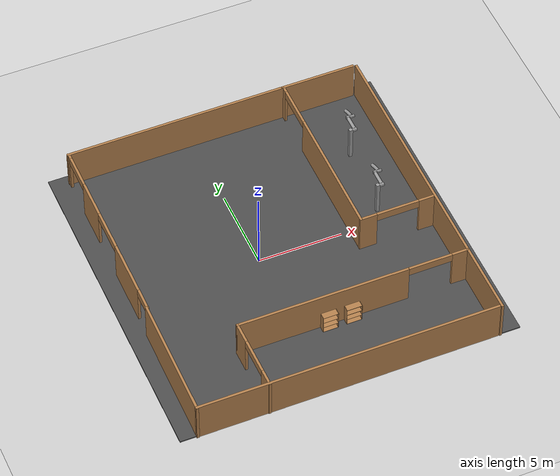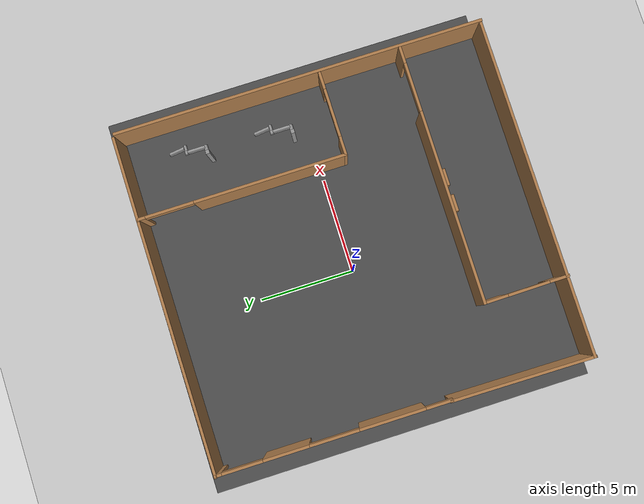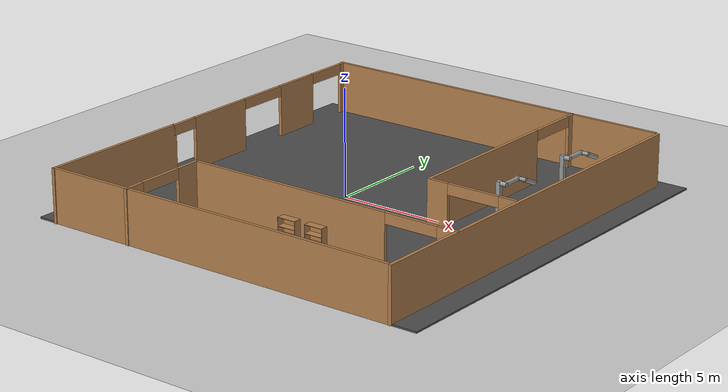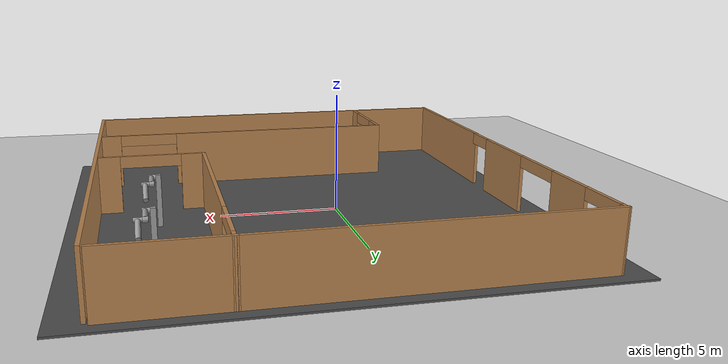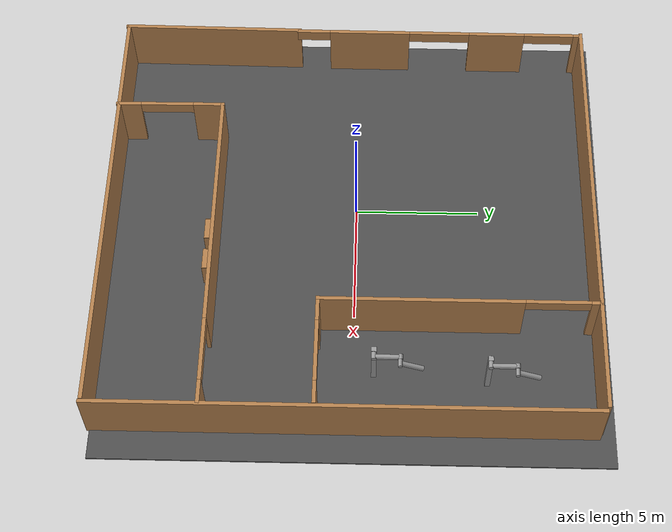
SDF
<sdf version="1.7">
 <world name="default">
  <model name="ground_plane">
   <static>1</static>
   <link name="link">
    <collision name="collision">
     <geometry><plane><normal>0 0 1</normal><size>100 100</size></plane></geometry>
     <surface><friction><ode><mu>100</mu><mu2>50</mu2></ode></friction></surface>
    </collision>
    <visual name="visual">
     <cast_shadows>0</cast_shadows>
     <geometry><plane><normal>0 0 1</normal><size>100 100</size></plane></geometry>
     <material>
      <script><uri>file://media/materials/scripts/gazebo.material</uri><name>Gazebo/Grey</name></script>
     </material>
    </visual>
   </link>
  </model>
  <model name="Untitled">
   <pose>1.1702 -0.25119 0 0 -0 0</pose>
   <link name="Wall_18">
    <collision name="Wall_18_Collision">
     <geometry><box><size>7.52942 0.15 2.5</size></box></geometry>
     <pose>0 0 1.25 0 -0 0</pose>
    </collision>
    <visual name="Wall_18_Visual">
     <pose>0 0 1.25 0 -0 0</pose>
     <geometry><box><size>7.52942 0.15 2.5</size></box></geometry>
     <material>
      <script><uri>file://media/materials/scripts/gazebo.material</uri><name>Gazebo/Wood</name></script>
      <ambient>0.996078 0.47451 0.0196078 1</ambient>
     </material>
     <meta><layer>0</layer></meta>
    </visual>
    <pose>-8.84446 -6.04176 0 0 -0 -1.58176</pose>
   </link>
   <link name="Wall_19">
    <collision name="Wall_19_Collision">
     <geometry><box><size>17.75 0.15 2.5</size></box></geometry>
     <pose>0 0 1.25 0 -0 0</pose>
    </collision>
    <visual name="Wall_19_Visual">
     <pose>0 0 1.25 0 -0 0</pose>
     <geometry><box><size>17.75 0.15 2.5</size></box></geometry>
     <material>
      <script><uri>file://media/materials/scripts/gazebo.material</uri><name>Gazebo/Wood</name></script>
      <ambient>0.996078 0.47451 0.0196078 1</ambient>
     </material>
     <meta><layer>0</layer></meta>
    </visual>
    <pose>-0.084919 -9.6908 0 0 -0 0</pose>
   </link>
   <link name="Wall_22">
    <collision name="Wall_22_Collision">
     <geometry><box><size>19.5 0.15 2.5</size></box></geometry>
     <pose>0 0 1.25 0 -0 0</pose>
    </collision>
    <visual name="Wall_22_Visual">
     <pose>0 0 1.25 0 -0 0</pose>
     <geometry><box><size>19.5 0.15 2.5</size></box></geometry>
     <material>
      <script><uri>file://media/materials/scripts/gazebo.material</uri><name>Gazebo/Wood</name></script>
      <ambient>1 1 1 1</ambient>
     </material>
     <meta><layer>0</layer></meta>
    </visual>
    <pose>8.88574 -0.046361 0 0 -0 1.5708</pose>
   </link>
   <link name="Wall_24">
    <pose>4.37815 4.31049 0 0 -0 1.5708</pose>
    <visual name="Wall_24_Visual_0">
     <pose>-1.48805 0 1.25 0 -0 0</pose>
     <geometry><box><size>8.02389 0.15 2.5</size></box></geometry>
     <material>
      <script><uri>file://media/materials/scripts/gazebo.material</uri><name>Gazebo/Wood</name></script>
      <ambient>1 1 1 1</ambient>
     </material>
     <meta><layer>0</layer></meta>
    </visual>
    <collision name="Wall_24_Collision_0">
     <geometry><box><size>8.02389 0.15 2.5</size></box></geometry>
     <pose>-1.48805 0 1.25 0 -0 0</pose>
    </collision>
    <visual name="Wall_24_Visual_1">
     <pose>5.27106 0 1.25 0 -0 0</pose>
     <geometry><box><size>0.457884 0.15 2.5</size></box></geometry>
     <material>
      <script><uri>file://media/materials/scripts/gazebo.material</uri><name>Gazebo/Wood</name></script>
      <ambient>1 1 1 1</ambient>
     </material>
     <meta><layer>0</layer></meta>
    </visual>
    <collision name="Wall_24_Collision_1">
     <geometry><box><size>0.457884 0.15 2.5</size></box></geometry>
     <pose>5.27106 0 1.25 0 -0 0</pose>
    </collision>
    <visual name="Wall_24_Visual_2">
     <pose>3.783 0 2.25 0 -0 0</pose>
     <geometry><box><size>2.51822 0.15 0.5</size></box></geometry>
     <material>
      <script><uri>file://media/materials/scripts/gazebo.material</uri><name>Gazebo/Wood</name></script>
      <ambient>1 1 1 1</ambient>
     </material>
     <meta><layer>0</layer></meta>
    </visual>
    <collision name="Wall_24_Collision_2">
     <geometry><box><size>2.51822 0.15 0.5</size></box></geometry>
     <pose>3.783 0 2.25 0 -0 0</pose>
    </collision>
   </link>
   <link name="Wall_25">
    <collision name="Wall_25_Collision">
     <geometry><box><size>13.2558 0.15 2.5</size></box></geometry>
     <pose>0 0 1.25 0 -0 0</pose>
    </collision>
    <visual name="Wall_25_Visual">
     <pose>0 0 1.25 0 -0 0</pose>
     <geometry><box><size>13.2558 0.15 2.5</size></box></geometry>
     <material>
      <script><uri>file://media/materials/scripts/gazebo.material</uri><name>Gazebo/Wood</name></script>
      <ambient>0.996078 0.47451 0.0196078 1</ambient>
     </material>
     <meta><layer>0</layer></meta>
    </visual>
    <pose>-2.22822 9.71302 0 0 -0 -3.13816</pose>
   </link>
   <link name="Wall_26">
    <pose>-8.7521 3.66913 0 0 -0 -1.5727</pose>
    <visual name="Wall_26_Visual_0">
     <pose>-5.90152 0 1.25 0 -0 0</pose>
     <geometry><box><size>0.389797 0.15 2.5</size></box></geometry>
     <material>
      <script><uri>file://media/materials/scripts/gazebo.material</uri><name>Gazebo/Wood</name></script>
      <ambient>1 1 1 1</ambient>
     </material>
     <meta><layer>0</layer></meta>
    </visual>
    <collision name="Wall_26_Collision_0">
     <geometry><box><size>0.389797 0.15 2.5</size></box></geometry>
     <pose>-5.90152 0 1.25 0 -0 0</pose>
    </collision>
    <visual name="Wall_26_Visual_1">
     <pose>-2.43056 0 1.25 0 -0 0</pose>
     <geometry><box><size>2.36586 0.15 2.5</size></box></geometry>
     <material>
      <script><uri>file://media/materials/scripts/gazebo.material</uri><name>Gazebo/Wood</name></script>
      <ambient>1 1 1 1</ambient>
     </material>
     <meta><layer>0</layer></meta>
    </visual>
    <collision name="Wall_26_Collision_1">
     <geometry><box><size>2.36586 0.15 2.5</size></box></geometry>
     <pose>-2.43056 0 1.25 0 -0 0</pose>
    </collision>
    <visual name="Wall_26_Visual_2">
     <pose>3.00362 0 1.25 0 -0 0</pose>
     <geometry><box><size>3.40409 0.15 2.5</size></box></geometry>
     <material>
      <script><uri>file://media/materials/scripts/gazebo.material</uri><name>Gazebo/Wood</name></script>
      <ambient>1 1 1 1</ambient>
     </material>
     <meta><layer>0</layer></meta>
    </visual>
    <collision name="Wall_26_Collision_2">
     <geometry><box><size>3.40409 0.15 2.5</size></box></geometry>
     <pose>3.00362 0 1.25 0 -0 0</pose>
    </collision>
    <visual name="Wall_26_Visual_3">
     <pose>-4.66005 0 2.25 0 -0 0</pose>
     <geometry><box><size>2.09313 0.15 0.5</size></box></geometry>
     <material>
      <script><uri>file://media/materials/scripts/gazebo.material</uri><name>Gazebo/Wood</name></script>
      <ambient>1 1 1 1</ambient>
     </material>
     <meta><layer>0</layer></meta>
    </visual>
    <collision name="Wall_26_Collision_3">
     <geometry><box><size>2.09313 0.15 0.5</size></box></geometry>
     <pose>-4.66005 0 2.25 0 -0 0</pose>
    </collision>
    <visual name="Wall_26_Visual_4">
     <pose>0.026972 0 2.25 0 -0 0</pose>
     <geometry><box><size>2.5492 0.15 0.5</size></box></geometry>
     <material>
      <script><uri>file://media/materials/scripts/gazebo.material</uri><name>Gazebo/Wood</name></script>
      <ambient>1 1 1 1</ambient>
     </material>
     <meta><layer>0</layer></meta>
    </visual>
    <collision name="Wall_26_Collision_4">
     <geometry><box><size>2.5492 0.15 0.5</size></box></geometry>
     <pose>0.026972 0 2.25 0 -0 0</pose>
    </collision>
    <visual name="Wall_26_Visual_5">
     <pose>5.40104 0 2.25 0 -0 0</pose>
     <geometry><box><size>1.39075 0.15 0.5</size></box></geometry>
     <material>
      <script><uri>file://media/materials/scripts/gazebo.material</uri><name>Gazebo/Wood</name></script>
      <ambient>1 1 1 1</ambient>
     </material>
     <meta><layer>0</layer></meta>
    </visual>
    <collision name="Wall_26_Collision_5">
     <geometry><box><size>1.39075 0.15 0.5</size></box></geometry>
     <pose>5.40104 0 2.25 0 -0 0</pose>
    </collision>
   </link>
   <link name="Wall_33">
    <pose>6.55316 -1.11451 0 0 -0 0</pose>
    <visual name="Wall_33_Visual_0">
     <pose>-1.72937 0 1.25 0 -0 0</pose>
     <geometry><box><size>1.04125 0.15 2.5</size></box></geometry>
     <material>
      <script><uri>file://media/materials/scripts/gazebo.material</uri><name>Gazebo/Wood</name></script>
      <ambient>1 1 1 1</ambient>
     </material>
     <meta><layer>0</layer></meta>
    </visual>
    <collision name="Wall_33_Collision_0">
     <geometry><box><size>1.04125 0.15 2.5</size></box></geometry>
     <pose>-1.72937 0 1.25 0 -0 0</pose>
    </collision>
    <visual name="Wall_33_Visual_1">
     <pose>1.79266 0 1.25 0 -0 0</pose>
     <geometry><box><size>0.914682 0.15 2.5</size></box></geometry>
     <material>
      <script><uri>file://media/materials/scripts/gazebo.material</uri><name>Gazebo/Wood</name></script>
      <ambient>1 1 1 1</ambient>
     </material>
     <meta><layer>0</layer></meta>
    </visual>
    <collision name="Wall_33_Collision_1">
     <geometry><box><size>0.914682 0.15 2.5</size></box></geometry>
     <pose>1.79266 0 1.25 0 -0 0</pose>
    </collision>
    <visual name="Wall_33_Visual_2">
     <pose>0.063285 0 2.25 0 -0 0</pose>
     <geometry><box><size>2.54407 0.15 0.5</size></box></geometry>
     <material>
      <script><uri>file://media/materials/scripts/gazebo.material</uri><name>Gazebo/Wood</name></script>
      <ambient>1 1 1 1</ambient>
     </material>
     <meta><layer>0</layer></meta>
    </visual>
    <collision name="Wall_33_Collision_2">
     <geometry><box><size>2.54407 0.15 0.5</size></box></geometry>
     <pose>0.063285 0 2.25 0 -0 0</pose>
    </collision>
   </link>
   <link name="Wall_35">
    <collision name="Wall_35_Collision">
     <geometry><box><size>4.5 0.15 2.5</size></box></geometry>
     <pose>0 0 1.25 0 -0 0</pose>
    </collision>
    <visual name="Wall_35_Visual">
     <pose>0 0 1.25 0 -0 0</pose>
     <geometry><box><size>4.5 0.15 2.5</size></box></geometry>
     <material>
      <script><uri>file://media/materials/scripts/gazebo.material</uri><name>Gazebo/Wood</name></script>
      <ambient>1 1 1 1</ambient>
     </material>
     <meta><layer>0</layer></meta>
    </visual>
    <pose>6.49965 9.73549 0 0 -0 0</pose>
   </link>
   <link name="Wall_37">
    <pose>2.03237 -5.38514 0 0 -0 3.14159</pose>
    <visual name="Wall_37_Visual_0">
     <pose>-6.38281 0 1.25 0 -0 0</pose>
     <geometry><box><size>0.984382 0.15 2.5</size></box></geometry>
     <material>
      <script><uri>file://media/materials/scripts/gazebo.material</uri><name>Gazebo/Wood</name></script>
      <ambient>1 1 1 1</ambient>
     </material>
     <meta><layer>0</layer></meta>
    </visual>
    <collision name="Wall_37_Collision_0">
     <geometry><box><size>0.984382 0.15 2.5</size></box></geometry>
     <pose>-6.38281 0 1.25 0 -0 0</pose>
    </collision>
    <visual name="Wall_37_Visual_1">
     <pose>1.78648 0 1.25 0 -0 0</pose>
     <geometry><box><size>10.177 0.15 2.5</size></box></geometry>
     <material>
      <script><uri>file://media/materials/scripts/gazebo.material</uri><name>Gazebo/Wood</name></script>
      <ambient>1 1 1 1</ambient>
     </material>
     <meta><layer>0</layer></meta>
    </visual>
    <collision name="Wall_37_Collision_1">
     <geometry><box><size>10.177 0.15 2.5</size></box></geometry>
     <pose>1.78648 0 1.25 0 -0 0</pose>
    </collision>
    <visual name="Wall_37_Visual_2">
     <pose>-4.59633 0 2.25 0 -0 0</pose>
     <geometry><box><size>2.58858 0.15 0.5</size></box></geometry>
     <material>
      <script><uri>file://media/materials/scripts/gazebo.material</uri><name>Gazebo/Wood</name></script>
      <ambient>1 1 1 1</ambient>
     </material>
     <meta><layer>0</layer></meta>
    </visual>
    <collision name="Wall_37_Collision_2">
     <geometry><box><size>2.58858 0.15 0.5</size></box></geometry>
     <pose>-4.59633 0 2.25 0 -0 0</pose>
    </collision>
   </link>
   <link name="Wall_38">
    <pose>-4.75004 -7.57773 0 0 -0 -1.56264</pose>
    <visual name="Wall_38_Visual_0">
     <pose>-1.60236 0 1.25 0 -0 0</pose>
     <geometry><box><size>1.26025 0.15 2.5</size></box></geometry>
     <material>
      <script><uri>file://media/materials/scripts/gazebo.material</uri><name>Gazebo/Wood</name></script>
      <ambient>1 1 1 1</ambient>
     </material>
     <meta><layer>0</layer></meta>
    </visual>
    <collision name="Wall_38_Collision_0">
     <geometry><box><size>1.26025 0.15 2.5</size></box></geometry>
     <pose>-1.60236 0 1.25 0 -0 0</pose>
    </collision>
    <visual name="Wall_38_Visual_1">
     <pose>1.71362 0 1.25 0 -0 0</pose>
     <geometry><box><size>1.03772 0.15 2.5</size></box></geometry>
     <material>
      <script><uri>file://media/materials/scripts/gazebo.material</uri><name>Gazebo/Wood</name></script>
      <ambient>1 1 1 1</ambient>
     </material>
     <meta><layer>0</layer></meta>
    </visual>
    <collision name="Wall_38_Collision_1">
     <geometry><box><size>1.03772 0.15 2.5</size></box></geometry>
     <pose>1.71362 0 1.25 0 -0 0</pose>
    </collision>
    <visual name="Wall_38_Visual_2">
     <pose>0.111266 0 2.25 0 -0 0</pose>
     <geometry><box><size>2.167 0.15 0.5</size></box></geometry>
     <material>
      <script><uri>file://media/materials/scripts/gazebo.material</uri><name>Gazebo/Wood</name></script>
      <ambient>1 1 1 1</ambient>
     </material>
     <meta><layer>0</layer></meta>
    </visual>
    <collision name="Wall_38_Collision_2">
     <geometry><box><size>2.167 0.15 0.5</size></box></geometry>
     <pose>0.111266 0 2.25 0 -0 0</pose>
    </collision>
   </link>
   <static>1</static>
  </model>
  <model name="asphalt_plane">
   <link name="link">
    <visual name="visual">
     <cast_shadows>0</cast_shadows>
     <geometry><box><size>20 20 0.1</size></box></geometry>
     <material>
      <script>
       <uri>model://asphalt_plane/materials/scripts</uri>
       <uri>model://asphalt_plane/materials/textures</uri>
       <name>vrc/asphalt</name>
      </script>
      <shader type="pixel"/>
     </material>
    </visual>
    <collision name="collision">
     <geometry><box><size>20 20 0.1</size></box></geometry>
     <surface>
      <friction>
       <ode><mu>1</mu><mu2>1</mu2><fdir1>0 0 0</fdir1><slip1>0</slip1><slip2>0</slip2></ode>
       <torsional>
        <coefficient>1</coefficient>
        <patch_radius>0</patch_radius>
        <surface_radius>0</surface_radius>
        <use_patch_radius>1</use_patch_radius>
        <ode><slip>0</slip></ode>
       </torsional>
      </friction>
      <bounce><restitution_coefficient>0</restitution_coefficient><threshold>1e+06</threshold></bounce>
      <contact>
       <collide_without_contact>0</collide_without_contact>
       <collide_without_contact_bitmask>1</collide_without_contact_bitmask>
       <collide_bitmask>1</collide_bitmask>
       <ode>
        <soft_cfm>0</soft_cfm>
        <soft_erp>0.2</soft_erp>
        <kp>1e+13</kp>
        <kd>1</kd>
        <max_vel>0.01</max_vel>
        <min_depth>0</min_depth>
       </ode>
       <bullet>
        <split_impulse>1</split_impulse>
        <split_impulse_penetration_threshold>-0.01</split_impulse_penetration_threshold>
        <soft_cfm>0</soft_cfm>
        <soft_erp>0.2</soft_erp>
        <kp>1e+13</kp>
        <kd>1</kd>
       </bullet>
      </contact>
     </surface>
    </collision>
   </link>
   <static>1</static>
   <pose>1.27844 0.044412 0 0 -0 0</pose>
  </model>
  <model name="bookshelf_2">
   <static>1</static>
   <link name="link">
    <inertial><mass>1</mass></inertial>
    <collision name="back">
     <pose>0 0.005 0.6 0 -0 0</pose>
     <geometry><box><size>0.9 0.01 1.2</size></box></geometry>
    </collision>
    <visual name="visual1">
     <pose>0 0.005 0.6 0 -0 0</pose>
     <geometry><box><size>0.9 0.01 1.2</size></box></geometry>
     <material>
      <script><uri>file://media/materials/scripts/gazebo.material</uri><name>Gazebo/Wood</name></script>
     </material>
    </visual>
    <collision name="left_side">
     <pose>0.45 -0.195 0.6 0 -0 0</pose>
     <geometry><box><size>0.02 0.4 1.2</size></box></geometry>
    </collision>
    <visual name="visual2">
     <pose>0.45 -0.195 0.6 0 -0 0</pose>
     <geometry><box><size>0.02 0.4 1.2</size></box></geometry>
     <material>
      <script><uri>file://media/materials/scripts/gazebo.material</uri><name>Gazebo/Wood</name></script>
     </material>
    </visual>
    <collision name="right_side">
     <pose>-0.45 -0.195 0.6 0 -0 0</pose>
     <geometry><box><size>0.02 0.4 1.2</size></box></geometry>
    </collision>
    <visual name="visual3">
     <pose>-0.45 -0.195 0.6 0 -0 0</pose>
     <geometry><box><size>0.02 0.4 1.2</size></box></geometry>
     <material>
      <script><uri>file://media/materials/scripts/gazebo.material</uri><name>Gazebo/Wood</name></script>
     </material>
    </visual>
    <collision name="bottom">
     <pose>0 -0.195 0.03 0 -0 0</pose>
     <geometry><box><size>0.88 0.4 0.06</size></box></geometry>
    </collision>
    <visual name="visual4">
     <pose>0 -0.195 0.03 0 -0 0</pose>
     <geometry><box><size>0.88 0.4 0.06</size></box></geometry>
     <material>
      <script><uri>file://media/materials/scripts/gazebo.material</uri><name>Gazebo/Wood</name></script>
     </material>
    </visual>
    <collision name="top">
     <pose>0 -0.195 1.19 0 -0 0</pose>
     <geometry><box><size>0.88 0.4 0.02</size></box></geometry>
    </collision>
    <visual name="visual5">
     <pose>0 -0.195 1.19 0 -0 0</pose>
     <geometry><box><size>0.88 0.4 0.02</size></box></geometry>
     <material>
      <script><uri>file://media/materials/scripts/gazebo.material</uri><name>Gazebo/Wood</name></script>
     </material>
    </visual>
    <collision name="low_shelf">
     <pose>0 -0.195 0.43 0 -0 0</pose>
     <geometry><box><size>0.88 0.4 0.02</size></box></geometry>
    </collision>
    <visual name="visual6">
     <pose>0 -0.195 0.43 0 -0 0</pose>
     <geometry><box><size>0.88 0.4 0.02</size></box></geometry>
     <material>
      <script><uri>file://media/materials/scripts/gazebo.material</uri><name>Gazebo/Wood</name></script>
     </material>
    </visual>
    <collision name="high_shelf">
     <pose>0 -0.195 0.8 0 -0 0</pose>
     <geometry><box><size>0.88 0.4 0.02</size></box></geometry>
    </collision>
    <visual name="visual7">
     <pose>0 -0.195 0.8 0 -0 0</pose>
     <geometry><box><size>0.88 0.4 0.02</size></box></geometry>
     <material>
      <script><uri>file://media/materials/scripts/gazebo.material</uri><name>Gazebo/Wood</name></script>
     </material>
    </visual>
   </link>
   <pose>1.70081 -5.70007 0 0 -0 0</pose>
  </model>
  <model name="bookshelf_3">
   <static>1</static>
   <link name="link">
    <inertial><mass>1</mass></inertial>
    <collision name="back">
     <pose>0 0.005 0.6 0 -0 0</pose>
     <geometry><box><size>0.9 0.01 1.2</size></box></geometry>
    </collision>
    <visual name="visual1">
     <pose>0 0.005 0.6 0 -0 0</pose>
     <geometry><box><size>0.9 0.01 1.2</size></box></geometry>
     <material>
      <script><uri>file://media/materials/scripts/gazebo.material</uri><name>Gazebo/Wood</name></script>
     </material>
    </visual>
    <collision name="left_side">
     <pose>0.45 -0.195 0.6 0 -0 0</pose>
     <geometry><box><size>0.02 0.4 1.2</size></box></geometry>
    </collision>
    <visual name="visual2">
     <pose>0.45 -0.195 0.6 0 -0 0</pose>
     <geometry><box><size>0.02 0.4 1.2</size></box></geometry>
     <material>
      <script><uri>file://media/materials/scripts/gazebo.material</uri><name>Gazebo/Wood</name></script>
     </material>
    </visual>
    <collision name="right_side">
     <pose>-0.45 -0.195 0.6 0 -0 0</pose>
     <geometry><box><size>0.02 0.4 1.2</size></box></geometry>
    </collision>
    <visual name="visual3">
     <pose>-0.45 -0.195 0.6 0 -0 0</pose>
     <geometry><box><size>0.02 0.4 1.2</size></box></geometry>
     <material>
      <script><uri>file://media/materials/scripts/gazebo.material</uri><name>Gazebo/Wood</name></script>
     </material>
    </visual>
    <collision name="bottom">
     <pose>0 -0.195 0.03 0 -0 0</pose>
     <geometry><box><size>0.88 0.4 0.06</size></box></geometry>
    </collision>
    <visual name="visual4">
     <pose>0 -0.195 0.03 0 -0 0</pose>
     <geometry><box><size>0.88 0.4 0.06</size></box></geometry>
     <material>
      <script><uri>file://media/materials/scripts/gazebo.material</uri><name>Gazebo/Wood</name></script>
     </material>
    </visual>
    <collision name="top">
     <pose>0 -0.195 1.19 0 -0 0</pose>
     <geometry><box><size>0.88 0.4 0.02</size></box></geometry>
    </collision>
    <visual name="visual5">
     <pose>0 -0.195 1.19 0 -0 0</pose>
     <geometry><box><size>0.88 0.4 0.02</size></box></geometry>
     <material>
      <script><uri>file://media/materials/scripts/gazebo.material</uri><name>Gazebo/Wood</name></script>
     </material>
    </visual>
    <collision name="low_shelf">
     <pose>0 -0.195 0.43 0 -0 0</pose>
     <geometry><box><size>0.88 0.4 0.02</size></box></geometry>
    </collision>
    <visual name="visual6">
     <pose>0 -0.195 0.43 0 -0 0</pose>
     <geometry><box><size>0.88 0.4 0.02</size></box></geometry>
     <material>
      <script><uri>file://media/materials/scripts/gazebo.material</uri><name>Gazebo/Wood</name></script>
     </material>
    </visual>
    <collision name="high_shelf">
     <pose>0 -0.195 0.8 0 -0 0</pose>
     <geometry><box><size>0.88 0.4 0.02</size></box></geometry>
    </collision>
    <visual name="visual7">
     <pose>0 -0.195 0.8 0 -0 0</pose>
     <geometry><box><size>0.88 0.4 0.02</size></box></geometry>
     <material>
      <script><uri>file://media/materials/scripts/gazebo.material</uri><name>Gazebo/Wood</name></script>
     </material>
    </visual>
   </link>
   <pose>3.10949 -5.68982 0 0 -0 0</pose>
  </model>
  <model name="double_pendulum_with_base">
   <link name="base">
    <inertial>
     <mass>100</mass>
     <inertia><ixx>1</ixx><ixy>0</ixy><ixz>0</ixz><iyy>1</iyy><iyz>0</iyz><izz>1</izz></inertia>
    </inertial>
    <visual name="vis_plate_on_ground">
     <pose>0 0 0.01 0 -0 0</pose>
     <geometry><cylinder><radius>0.8</radius><length>0.02</length></cylinder></geometry>
     <material>
      <script><uri>file://media/materials/scripts/gazebo.material</uri><name>Gazebo/Grey</name></script>
     </material>
    </visual>
    <visual name="vis_pole">
     <pose>-0.275 0 1.1 0 -0 0</pose>
     <geometry><box><size>0.2 0.2 2.2</size></box></geometry>
     <material>
      <script><uri>file://media/materials/scripts/gazebo.material</uri><name>Gazebo/Grey</name></script>
     </material>
    </visual>
    <collision name="col_plate_on_ground">
     <pose>0 0 0.01 0 -0 0</pose>
     <geometry><cylinder><radius>0.8</radius><length>0.02</length></cylinder></geometry>
    </collision>
    <collision name="col_pole">
     <pose>-0.275 0 1.1 0 -0 0</pose>
     <geometry><box><size>0.2 0.2 2.2</size></box></geometry>
    </collision>
   </link>
   <link name="upper_link">
    <pose>0 0 2.1 -1.5708 0 0</pose>
    <inertial>
     <pose>0 0 0.5 0 -0 0</pose>
     <inertia><ixx>1</ixx><ixy>0</ixy><ixz>0</ixz><iyy>1</iyy><iyz>0</iyz><izz>1</izz></inertia>
     <mass>1</mass>
    </inertial>
    <visual name="vis_upper_joint">
     <pose>-0.05 0 0 3.14159 1.57079 3.14159</pose>
     <geometry><cylinder><radius>0.1</radius><length>0.3</length></cylinder></geometry>
     <material>
      <script><uri>file://media/materials/scripts/gazebo.material</uri><name>Gazebo/Grey</name></script>
     </material>
    </visual>
    <visual name="vis_lower_joint">
     <pose>0 0 1 3.14159 1.57079 3.14159</pose>
     <geometry><cylinder><radius>0.1</radius><length>0.2</length></cylinder></geometry>
     <material>
      <script><uri>file://media/materials/scripts/gazebo.material</uri><name>Gazebo/Grey</name></script>
     </material>
    </visual>
    <visual name="vis_cylinder">
     <pose>0 0 0.5 0 -0 0</pose>
     <geometry><cylinder><radius>0.1</radius><length>0.9</length></cylinder></geometry>
     <material>
      <script><uri>file://media/materials/scripts/gazebo.material</uri><name>Gazebo/Grey</name></script>
     </material>
    </visual>
    <collision name="col_upper_joint">
     <pose>-0.05 0 0 3.14159 1.57079 3.14159</pose>
     <geometry><cylinder><radius>0.1</radius><length>0.3</length></cylinder></geometry>
    </collision>
    <collision name="col_lower_joint">
     <pose>0 0 1 3.14159 1.57079 3.14159</pose>
     <geometry><cylinder><radius>0.1</radius><length>0.2</length></cylinder></geometry>
    </collision>
    <collision name="col_cylinder">
     <pose>0 0 0.5 0 -0 0</pose>
     <geometry><cylinder><radius>0.1</radius><length>0.9</length></cylinder></geometry>
    </collision>
   </link>
   <link name="lower_link">
    <pose>0.25 1 2.1 -2 0 0</pose>
    <inertial>
     <pose>0 0 0.5 0 -0 0</pose>
     <inertia><ixx>1</ixx><ixy>0</ixy><ixz>0</ixz><iyy>1</iyy><iyz>0</iyz><izz>1</izz></inertia>
     <mass>1</mass>
    </inertial>
    <visual name="vis_lower_joint">
     <pose>0 0 0 3.14159 1.57079 3.14159</pose>
     <geometry><cylinder><radius>0.08</radius><length>0.3</length></cylinder></geometry>
     <material>
      <script><uri>file://media/materials/scripts/gazebo.material</uri><name>Gazebo/Grey</name></script>
     </material>
    </visual>
    <visual name="vis_cylinder">
     <pose>0 0 0.5 0 -0 0</pose>
     <geometry><cylinder><radius>0.1</radius><length>0.9</length></cylinder></geometry>
     <material>
      <script><uri>file://media/materials/scripts/gazebo.material</uri><name>Gazebo/Grey</name></script>
     </material>
    </visual>
    <collision name="col_lower_joint">
     <pose>0 0 0 3.14159 1.57079 3.14159</pose>
     <geometry><cylinder><radius>0.08</radius><length>0.3</length></cylinder></geometry>
    </collision>
    <collision name="col_cylinder">
     <pose>0 0 0.5 0 -0 0</pose>
     <geometry><cylinder><radius>0.1</radius><length>0.9</length></cylinder></geometry>
    </collision>
   </link>
   <joint name="upper_joint" type="revolute">
    <parent>base</parent>
    <child>upper_link</child>
    <axis>
     <xyz>1 0 0</xyz>
     <limit><lower>-1e+16</lower><upper>1e+16</upper></limit>
     <dynamics><spring_reference>0</spring_reference><spring_stiffness>0</spring_stiffness></dynamics>
    </axis>
   </joint>
   <joint name="lower_joint" type="revolute">
    <parent>upper_link</parent>
    <child>lower_link</child>
    <axis>
     <xyz>1 0 0</xyz>
     <limit><lower>-1e+16</lower><upper>1e+16</upper></limit>
     <dynamics><spring_reference>0</spring_reference><spring_stiffness>0</spring_stiffness></dynamics>
    </axis>
   </joint>
   <pose>7.82992 0.819199 0 0 -0 0</pose>
  </model>
  <model name="double_pendulum_with_base_0">
   <link name="base">
    <inertial>
     <mass>100</mass>
     <inertia><ixx>1</ixx><ixy>0</ixy><ixz>0</ixz><iyy>1</iyy><iyz>0</iyz><izz>1</izz></inertia>
    </inertial>
    <visual name="vis_plate_on_ground">
     <pose>0 0 0.01 0 -0 0</pose>
     <geometry><cylinder><radius>0.8</radius><length>0.02</length></cylinder></geometry>
     <material>
      <script><uri>file://media/materials/scripts/gazebo.material</uri><name>Gazebo/Grey</name></script>
     </material>
    </visual>
    <visual name="vis_pole">
     <pose>-0.275 0 1.1 0 -0 0</pose>
     <geometry><box><size>0.2 0.2 2.2</size></box></geometry>
     <material>
      <script><uri>file://media/materials/scripts/gazebo.material</uri><name>Gazebo/Grey</name></script>
     </material>
    </visual>
    <collision name="col_plate_on_ground">
     <pose>0 0 0.01 0 -0 0</pose>
     <geometry><cylinder><radius>0.8</radius><length>0.02</length></cylinder></geometry>
    </collision>
    <collision name="col_pole">
     <pose>-0.275 0 1.1 0 -0 0</pose>
     <geometry><box><size>0.2 0.2 2.2</size></box></geometry>
    </collision>
   </link>
   <link name="upper_link">
    <pose>0 0 2.1 -1.5708 0 0</pose>
    <inertial>
     <pose>0 0 0.5 0 -0 0</pose>
     <inertia><ixx>1</ixx><ixy>0</ixy><ixz>0</ixz><iyy>1</iyy><iyz>0</iyz><izz>1</izz></inertia>
     <mass>1</mass>
    </inertial>
    <visual name="vis_upper_joint">
     <pose>-0.05 0 0 3.14159 1.57079 3.14159</pose>
     <geometry><cylinder><radius>0.1</radius><length>0.3</length></cylinder></geometry>
     <material>
      <script><uri>file://media/materials/scripts/gazebo.material</uri><name>Gazebo/Grey</name></script>
     </material>
    </visual>
    <visual name="vis_lower_joint">
     <pose>0 0 1 3.14159 1.57079 3.14159</pose>
     <geometry><cylinder><radius>0.1</radius><length>0.2</length></cylinder></geometry>
     <material>
      <script><uri>file://media/materials/scripts/gazebo.material</uri><name>Gazebo/Grey</name></script>
     </material>
    </visual>
    <visual name="vis_cylinder">
     <pose>0 0 0.5 0 -0 0</pose>
     <geometry><cylinder><radius>0.1</radius><length>0.9</length></cylinder></geometry>
     <material>
      <script><uri>file://media/materials/scripts/gazebo.material</uri><name>Gazebo/Grey</name></script>
     </material>
    </visual>
    <collision name="col_upper_joint">
     <pose>-0.05 0 0 3.14159 1.57079 3.14159</pose>
     <geometry><cylinder><radius>0.1</radius><length>0.3</length></cylinder></geometry>
    </collision>
    <collision name="col_lower_joint">
     <pose>0 0 1 3.14159 1.57079 3.14159</pose>
     <geometry><cylinder><radius>0.1</radius><length>0.2</length></cylinder></geometry>
    </collision>
    <collision name="col_cylinder">
     <pose>0 0 0.5 0 -0 0</pose>
     <geometry><cylinder><radius>0.1</radius><length>0.9</length></cylinder></geometry>
    </collision>
   </link>
   <link name="lower_link">
    <pose>0.25 1 2.1 -2 0 0</pose>
    <inertial>
     <pose>0 0 0.5 0 -0 0</pose>
     <inertia><ixx>1</ixx><ixy>0</ixy><ixz>0</ixz><iyy>1</iyy><iyz>0</iyz><izz>1</izz></inertia>
     <mass>1</mass>
    </inertial>
    <visual name="vis_lower_joint">
     <pose>0 0 0 3.14159 1.57079 3.14159</pose>
     <geometry><cylinder><radius>0.08</radius><length>0.3</length></cylinder></geometry>
     <material>
      <script><uri>file://media/materials/scripts/gazebo.material</uri><name>Gazebo/Grey</name></script>
     </material>
    </visual>
    <visual name="vis_cylinder">
     <pose>0 0 0.5 0 -0 0</pose>
     <geometry><cylinder><radius>0.1</radius><length>0.9</length></cylinder></geometry>
     <material>
      <script><uri>file://media/materials/scripts/gazebo.material</uri><name>Gazebo/Grey</name></script>
     </material>
    </visual>
    <collision name="col_lower_joint">
     <pose>0 0 0 3.14159 1.57079 3.14159</pose>
     <geometry><cylinder><radius>0.08</radius><length>0.3</length></cylinder></geometry>
    </collision>
    <collision name="col_cylinder">
     <pose>0 0 0.5 0 -0 0</pose>
     <geometry><cylinder><radius>0.1</radius><length>0.9</length></cylinder></geometry>
    </collision>
   </link>
   <joint name="upper_joint" type="revolute">
    <parent>base</parent>
    <child>upper_link</child>
    <axis>
     <xyz>1 0 0</xyz>
     <limit><lower>-1e+16</lower><upper>1e+16</upper></limit>
     <dynamics><spring_reference>0</spring_reference><spring_stiffness>0</spring_stiffness></dynamics>
    </axis>
   </joint>
   <joint name="lower_joint" type="revolute">
    <parent>upper_link</parent>
    <child>lower_link</child>
    <axis>
     <xyz>1 0 0</xyz>
     <limit><lower>-1e+16</lower><upper>1e+16</upper></limit>
     <dynamics><spring_reference>0</spring_reference><spring_stiffness>0</spring_stiffness></dynamics>
    </axis>
   </joint>
   <pose>8.12636 5.21775 0 0 -0 0</pose>
  </model>
 </world>
</sdf>
